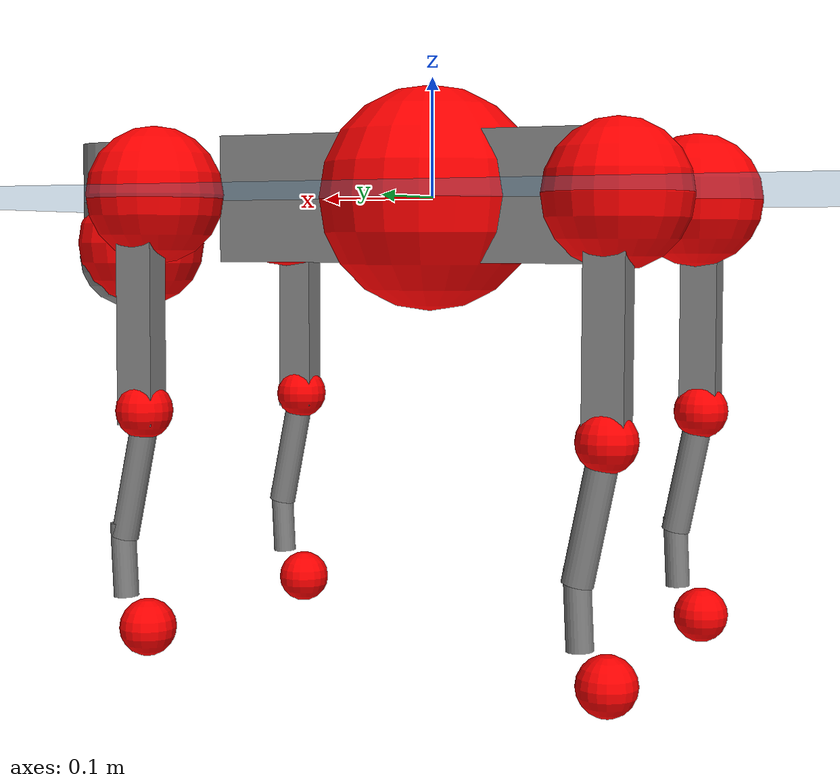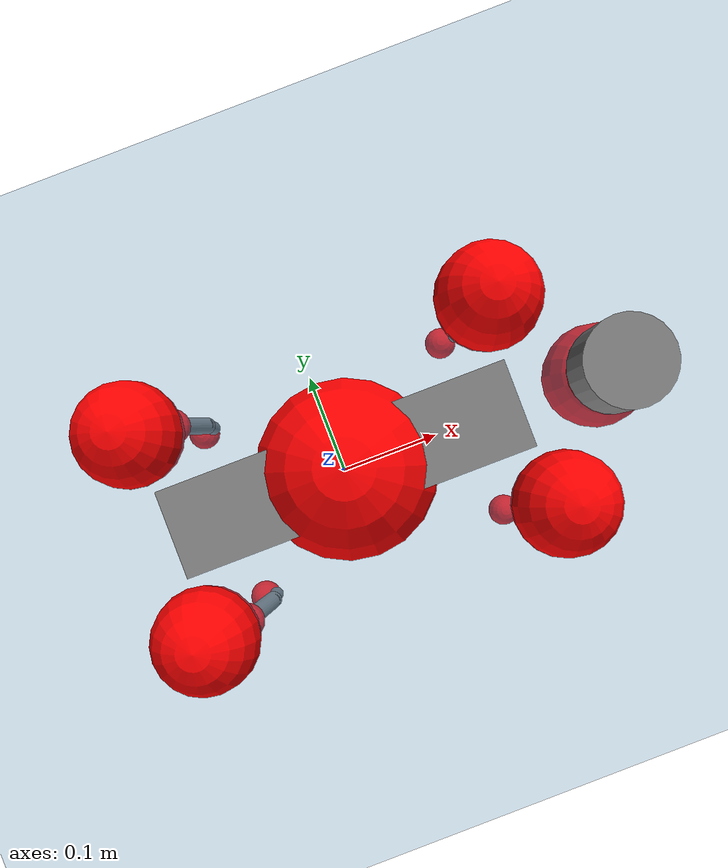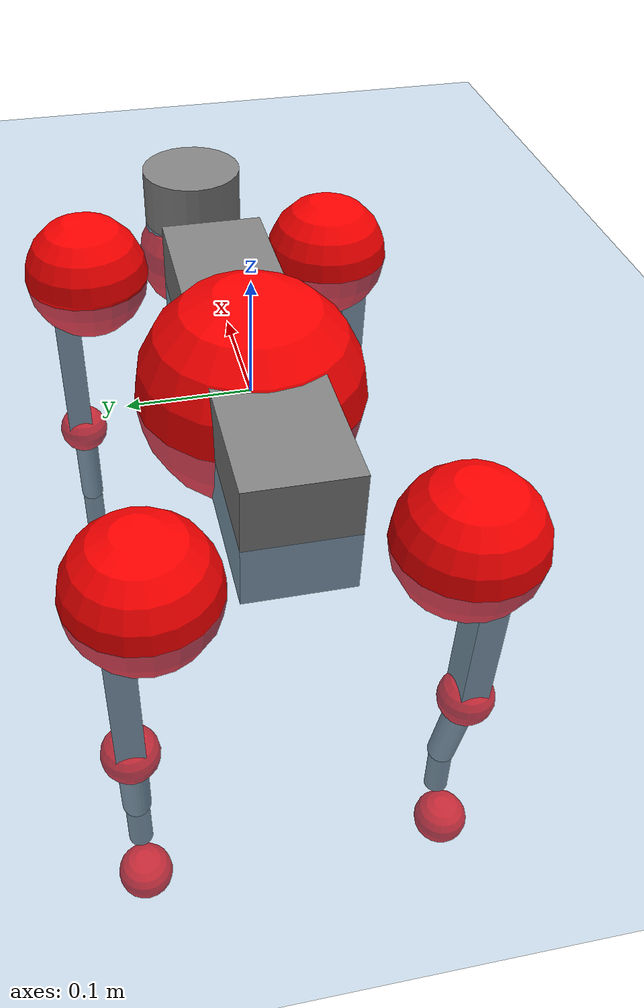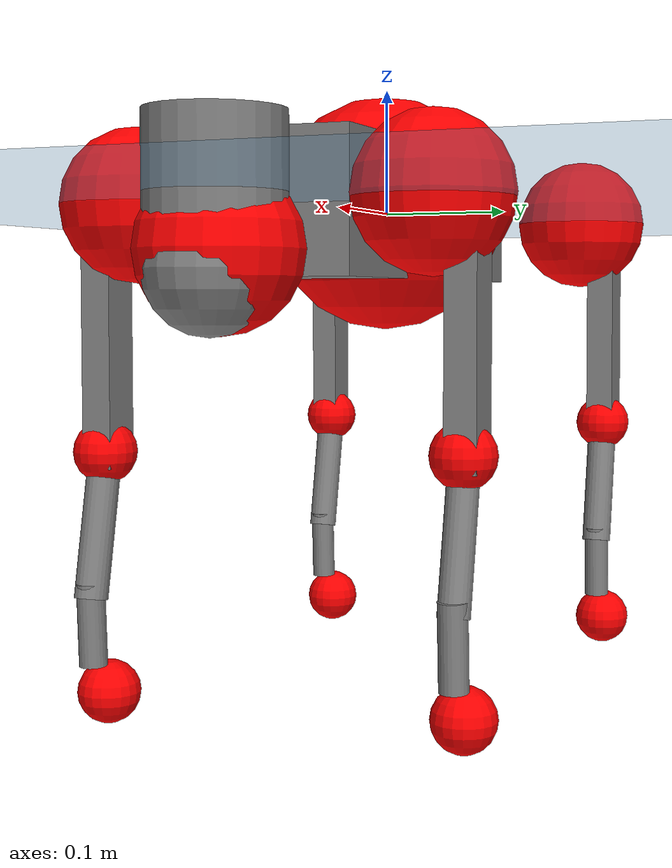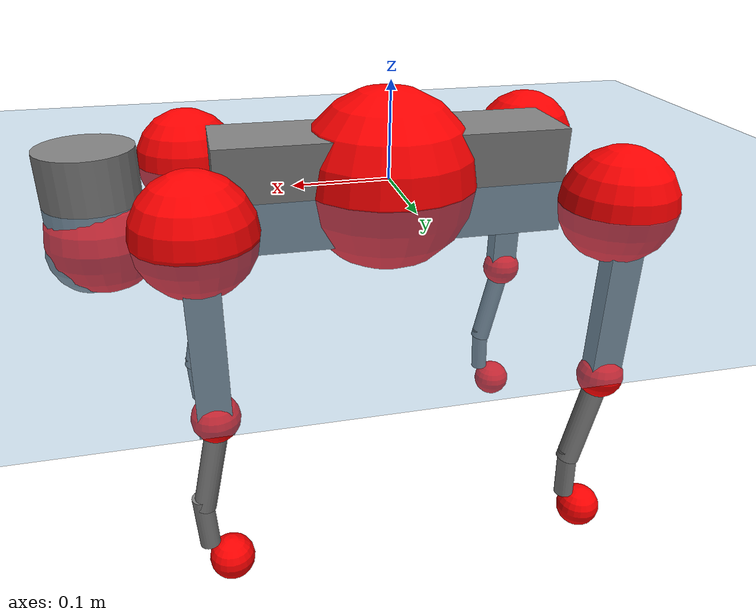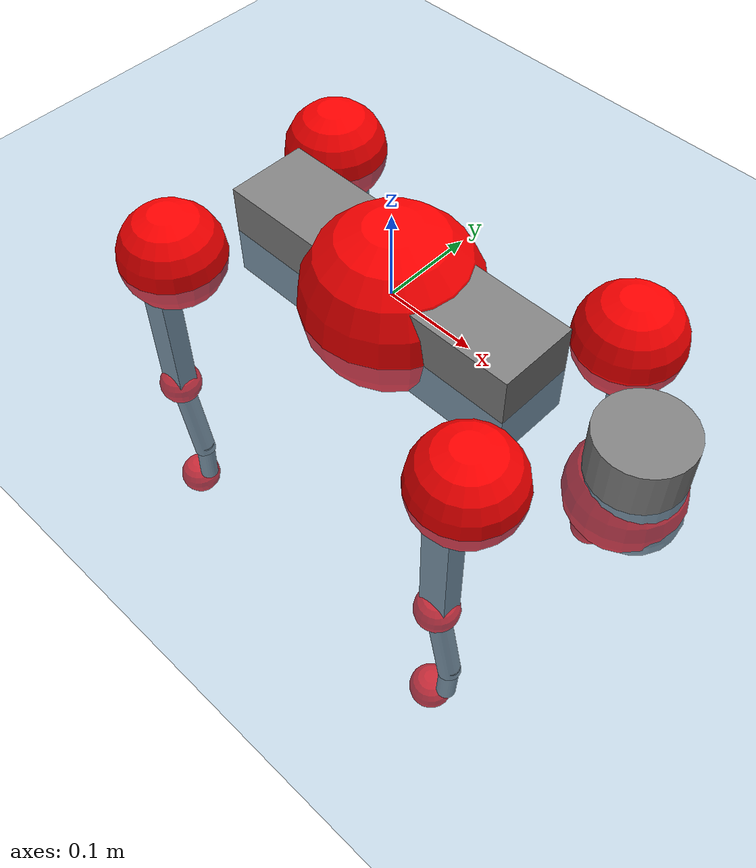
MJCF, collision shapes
<mujoco model="go2">
  <compiler angle="radian" assetdir="assets" balanceinertia="true" inertiafromgeom="false"/>

  <option timestep="0.005" density="1.2" viscosity="2e-05"/>

  <size nkey="1"/>

  <visual>
    <quality shadowsize="8192"/>
    <map shadowclip="0.5"/>
  </visual>

  <default>
    <default class="/">
      <geom contype="0" conaffinity="0" group="1" solref="-1000 -80"/>
      <site size="0.01 0.005 0.005" group="5"/>
      <general forcelimited="true" biastype="affine" gainprm="20" biasprm="0 -20 -0.5"/>
      <default class="go2">
        <joint armature="0.01" damping="0.01" frictionloss="0.2"/>
        <geom condim="1" margin="0.001"/>
        <default class="visual">
          <geom type="mesh" group="2"/>
        </default>
        <default class="collision">
          <geom group="3"/>
          <default class="foot">
            <geom size="0.022 0 0" condim="6" priority="1" friction="0.8 0.02 0.01" solimp="0.015 1 0.022"/>
          </default>
        </default>
        <default class="reward_collision_sphere">
          <geom group="5" rgba="1 0 0 1"/>
        </default>
      </default>
    </default>
  </default>

  <asset>
    <texture type="skybox" colorspace="auto" name="//unnamed_texture_0" builtin="gradient" rgb1="0.95 0.95 0.95" rgb2="0.95 0.95 0.95" width="100" height="600"/>
    <texture type="2d" colorspace="auto" name="texplane" builtin="checker" rgb1="0.345 0.575 0.748" rgb2="0.345 0.575 0.748" markrgb="1 1 1" width="512" height="512"/>
    <material name="MatPlane" class="/" texture="texplane" texuniform="true" texrepeat="2 2" specular="0.9"/>
    <material name="metal" class="/" rgba="0.9 0.95 0.95 1"/>
    <material name="black" class="/" rgba="0 0 0 1"/>
    <material name="white" class="/"/>
    <material name="gray" class="/" rgba="0.671705 0.692426 0.77427 1"/>
    <mesh name="base_0" class="/" file="base_0.obj"/>
    <mesh name="base_1" class="/" file="base_1.obj"/>
    <mesh name="base_2" class="/" file="base_2.obj"/>
    <mesh name="base_3" class="/" file="base_3.obj"/>
    <mesh name="base_4" class="/" file="base_4.obj"/>
    <mesh name="hip_0" class="/" file="hip_0.obj"/>
    <mesh name="hip_1" class="/" file="hip_1.obj"/>
    <mesh name="thigh_0" class="/" file="thigh_0.obj"/>
    <mesh name="thigh_1" class="/" file="thigh_1.obj"/>
    <mesh name="thigh_mirror_0" class="/" file="thigh_mirror_0.obj"/>
    <mesh name="thigh_mirror_1" class="/" file="thigh_mirror_1.obj"/>
    <mesh name="calf_0" class="/" file="calf_0.obj"/>
    <mesh name="calf_1" class="/" file="calf_1.obj"/>
    <mesh name="calf_mirror_0" class="/" file="calf_mirror_0.obj"/>
    <mesh name="calf_mirror_1" class="/" file="calf_mirror_1.obj"/>
    <mesh name="foot" class="/" file="foot.obj"/>
  </asset>

  <worldbody>
    <geom name="floor" class="/" size="100 100 0.125" type="plane" group="0" material="MatPlane"/>
    <light name="toplight_shadow" class="/" pos="0 0 5" dir="0.0990148 0.0990148 -0.990148" type="directional" ambient="0.04 0.04 0.04" diffuse="0.55 0.55 0.55" specular="0.12 0.12 0.12"/>
    <light name="toplight_fill" class="/" pos="0 0 5" dir="0.0990148 0.0990148 -0.990148" type="directional" castshadow="false" ambient="0.04 0.04 0.04" diffuse="0.3 0.3 0.3" specular="0.08 0.08 0.08"/>
    <body name="trunk" childclass="go2" pos="0.00260801 -0.000528753 0.000120743" quat="0.999999 0.000249072 -0.000932995 -0.00078516">
      <inertial pos="0.0187865 -0.000275314 -0.00460954" quat="0.00249811 0.712546 -0.000877199 0.701621" mass="5.55022" diaginertia="0.117484 0.0807722 0.0101601"/>
      <joint name="//unnamed_joint_0" type="free" armature="0" damping="0" frictionloss="0"/>
      <geom name="//unnamed_geom_1" class="visual" material="black" mesh="base_0"/>
      <geom name="//unnamed_geom_2" class="visual" material="black" mesh="base_1"/>
      <geom name="//unnamed_geom_3" class="visual" material="black" mesh="base_2"/>
      <geom name="//unnamed_geom_4" class="visual" material="white" mesh="base_3"/>
      <geom name="//unnamed_geom_5" class="visual" material="gray" mesh="base_4"/>
      <geom name="trunk_1" class="collision" size="0.177262 0.0440562 0.0537156" type="box"/>
      <geom name="trunk_2" class="collision" size="0.047119 0.0424071" pos="0.290892 0 0.00842382" type="cylinder"/>
      <geom name="trunk_3" class="collision" size="0.0442918" pos="0.299058 0 -0.0505429"/>
      <geom name="//unnamed_geom_9" class="reward_collision_sphere" size="0.0942379"/>
      <geom name="//unnamed_geom_10" class="reward_collision_sphere" size="0.0565428" pos="0.285789 0 -0.0379072"/>
      <site name="imu" pos="-0.0283433 0.00192116 0.0477013" size="0.00942379"/>
      <camera name="track" pos="0 -1.92816 0" quat="0.707107 0.707107 0 0" mode="trackcom"/>
      <camera name="ego_camera" pos="0.318451 0 0.0379072" quat="-0.5 -0.5 0.5 0.5"/>
      <body name="FL_hip" pos="0.197744 0.0462292 0.0016639" quat="1 -0.000164306 0.000188858 4.18483e-05">
        <inertial pos="-0.00653311 0.000661184 0.000318538" quat="0.496973 0.49981 0.504371 0.498816" mass="0.561758" diaginertia="0.000999512 0.000491841 0.000203295"/>
        <joint name="FL_hip_joint" pos="0 0 0" axis="0.999891 -0.0035745 -0.0143136" range="-0.997144 1.04712" armature="0.00934047" damping="0.00900405" frictionloss="0.190245"/>
        <geom name="//unnamed_geom_11" class="visual" material="metal" mesh="hip_0"/>
        <geom name="//unnamed_geom_12" class="visual" material="gray" mesh="hip_1"/>
        <geom name="//unnamed_geom_13" class="collision" size="0.0433494 0.0188476" pos="0 0.0771265 0" quat="0.707107 0.707107 0 0" type="cylinder"/>
        <geom name="//unnamed_geom_14" class="reward_collision_sphere" size="0.0565428" pos="0 0.0674857 0"/>
        <body name="FL_thigh" pos="-0.00105278 0.0916489 0.0022594" quat="1 0.00041908 -0.000792034 0.000406967">
          <inertial pos="-0.00268323 -0.0223799 -0.02985" quat="0.829659 0.0847941 -0.0197925 0.551439" mass="0.938566" diaginertia="0.0064625 0.00479992 0.000377327"/>
          <joint name="FL_thigh_joint" pos="0 0 0" axis="0.00713338 0.999949 -0.00712289" range="-1.56843 3.49331" armature="0.00967591" damping="0.00616741" frictionloss="0.196562"/>
          <geom name="//unnamed_geom_15" class="visual" material="metal" mesh="thigh_0"/>
          <geom name="//unnamed_geom_16" class="visual" material="gray" mesh="thigh_1"/>
          <geom name="//unnamed_geom_17" class="collision" size="0.100363 0.0115441 0.0160204" pos="0 0 -0.0897137" quat="0.707107 0 0.707107 0" type="box"/>
          <body name="FL_calf" pos="-0.000747437 -0.00292654 -0.178766" quat="1 0.000289277 0.000132375 -0.000255561">
            <inertial pos="0.00446065 -0.000385865 -0.117258" quat="0.712572 0.0020556 -0.00625423 0.701568" mass="0.20177" diaginertia="0.00168968 0.00127474 2.29762e-05"/>
            <joint name="FL_calf_joint" pos="0 0 0" axis="-0.00706396 0.999969 0.0034782" stiffness="0.00647342" range="-2.77399 -0.827976" armature="0.00948648" damping="0" frictionloss="0.190959"/>
            <geom name="//unnamed_geom_18" class="visual" material="gray" mesh="calf_0"/>
            <geom name="//unnamed_geom_19" class="visual" material="black" mesh="calf_1"/>
            <geom name="FL_calf0" class="collision" size="0.0113086 0.0565428" pos="0.0081654 0 -0.0505429" quat="0.994493 0 -0.104807 0" type="cylinder"/>
            <geom name="//unnamed_geom_21" class="collision" size="0.0103662 0.0306273" pos="0.0204135 0 -0.124673" quat="0.999688 0 0.0249974 0" type="cylinder"/>
            <geom name="//unnamed_geom_22" class="visual" pos="0 0 -0.179427" quat="1 0 0 0" material="black" mesh="foot"/>
            <geom name="FL_foot" class="foot" size="0.0184404" pos="-0.00204135 0 -0.179427"/>
            <geom name="//unnamed_geom_24" class="reward_collision_sphere" size="0.0235595"/>
            <geom name="//unnamed_geom_25" class="reward_collision_sphere" size="0.0235595" pos="-0.00204135 0 -0.179427"/>
            <site name="FL_foot" class="foot" pos="-0.00204135 0 -0.179427" size="0.00942379"/>
          </body>
        </body>
      </body>
      <body name="FR_hip" pos="0.197688 -0.0457658 -0.00203034" quat="1 7.75746e-05 0.000433341 0.000708299">
        <inertial pos="-0.00488366 -0.00415085 -0.000573238" quat="0.502832 0.498995 0.505004 0.493087" mass="0.561792" diaginertia="0.000952662 0.000492795 0.000199647"/>
        <joint name="FR_hip_joint" pos="0 0 0" axis="0.999982 0.00472638 0.00364233" stiffness="0.00419778" range="-1.06747 1.04872" armature="0.00897083" damping="0.0171017" frictionloss="0.168097"/>
        <geom name="//unnamed_geom_26" class="visual" pos="0 1.06019e-09 4.54736e-08" quat="4.63268e-05 1 0 0" material="metal" mesh="hip_0"/>
        <geom name="//unnamed_geom_27" class="visual" pos="0 1.71869e-09 -1.12474e-07" quat="4.63268e-05 1 0 0" material="gray" mesh="hip_1"/>
        <geom name="//unnamed_geom_28" class="collision" size="0.0433494 0.0188476" pos="0 -0.0771265 0" quat="0.707107 0.707107 0 0" type="cylinder"/>
        <geom name="//unnamed_geom_29" class="reward_collision_sphere" size="0.0565428" pos="0 -0.0674857 0"/>
        <body name="FR_thigh" pos="0.000548332 -0.0946872 -0.00133464" quat="1 -0.000280667 -0.000130261 0.000210555">
          <inertial pos="-0.00302821 0.019888 -0.027806" quat="0.548729 -0.0229025 0.0817792 0.831676" mass="0.975574" diaginertia="0.00656362 0.00492624 0.000382765"/>
          <joint name="FR_thigh_joint" pos="0 0 0" axis="-0.00171259 -0.999999 -2.35011e-05" range="-3.48739 1.60811" armature="0.00948996" damping="0.0162509" frictionloss="0.185738"/>
          <geom name="//unnamed_geom_30" class="visual" material="metal" mesh="thigh_mirror_0"/>
          <geom name="//unnamed_geom_31" class="visual" material="gray" mesh="thigh_mirror_1"/>
          <geom name="//unnamed_geom_32" class="collision" size="0.100363 0.0115441 0.0160204" pos="0 0 -0.0897137" quat="0.707107 0 0.707107 0" type="box"/>
          <body name="FR_calf" pos="-0.000391269 -0.00250672 -0.178652" quat="1 -1.74829e-05 1.13185e-05 -6.66623e-06">
            <inertial pos="0.00656008 0.00119666 -0.119625" quat="0.699114 0.00560727 0.00220909 0.714985" mass="0.200436" diaginertia="0.00164772 0.00121581 2.20752e-05"/>
            <joint name="FR_calf_joint" pos="0 0 0" axis="-0.00613096 -0.999918 -0.0112811" range="0.847203 2.75191" armature="0.0098331" damping="0.0220755" frictionloss="0.193914"/>
            <geom name="//unnamed_geom_33" class="visual" material="gray" mesh="calf_mirror_0"/>
            <geom name="//unnamed_geom_34" class="visual" material="black" mesh="calf_mirror_1"/>
            <geom name="FR_calf0" class="collision" size="0.0122509 0.0565428" pos="0.0102068 0 -0.0505429" quat="0.995004 0 -0.0998334 0" type="cylinder"/>
            <geom name="//unnamed_geom_36" class="collision" size="0.0103662 0.0306273" pos="0.0204135 0 -0.124673" quat="0.999688 0 0.0249974 0" type="cylinder"/>
            <geom name="//unnamed_geom_37" class="visual" pos="0 0 -0.179427" quat="1 0 0 0" material="black" mesh="foot"/>
            <geom name="FR_foot" class="foot" size="0.022897" pos="-0.00204135 0 -0.179427"/>
            <geom name="//unnamed_geom_39" class="reward_collision_sphere" size="0.0235595"/>
            <geom name="//unnamed_geom_40" class="reward_collision_sphere" size="0.0235595" pos="-0.00204135 0 -0.179427"/>
            <site name="FR_foot" class="foot" pos="-0.00204135 0 -0.179427" size="0.00942379"/>
          </body>
        </body>
      </body>
      <body name="RL_hip" pos="-0.198327 0.0459512 -0.00180383" quat="1 0.000564929 -0.000271259 0.000212821">
        <inertial pos="0.00473067 0.00478893 -0.00136022" quat="0.514267 0.497871 0.487453 0.500043" mass="0.578838" diaginertia="0.000973111 0.00048983 0.000207444"/>
        <joint name="RL_hip_joint" pos="0 0 0" axis="-0.99985 0.00995298 0.0141867" stiffness="0.00685402" range="-1.04729 1.03051" armature="0.00852105" damping="0.0135199" frictionloss="0.210682"/>
        <geom name="//unnamed_geom_41" class="visual" pos="-1.55321e-09 0 -3.04466e-07" quat="4.63268e-05 0 1 0" material="metal" mesh="hip_0"/>
        <geom name="//unnamed_geom_42" class="visual" pos="-2.51795e-09 0 -2.70018e-07" quat="4.63268e-05 0 1 0" material="gray" mesh="hip_1"/>
        <geom name="//unnamed_geom_43" class="collision" size="0.0433494 0.0188476" pos="0 0.0771265 0" quat="0.707107 0.707107 0 0" type="cylinder"/>
        <geom name="//unnamed_geom_44" class="reward_collision_sphere" size="0.0565428" pos="0 0.0674857 0"/>
        <body name="RL_thigh" pos="-0.000355637 0.0890164 0.00194424" quat="1 2.86531e-06 3.1937e-06 2.81556e-06">
          <inertial pos="-0.00373608 -0.0213099 -0.0282586" quat="0.831182 0.0814866 -0.0203321 0.549621" mass="0.9819" diaginertia="0.00654359 0.00476929 0.000372963"/>
          <joint name="RL_thigh_joint" pos="0 0 0" axis="0.00550854 0.999971 0.00529353" stiffness="0.00886708" range="-0.513142 4.5428" armature="0.0102016" damping="0.00694539" frictionloss="0.189025"/>
          <geom name="//unnamed_geom_45" class="visual" material="metal" mesh="thigh_0"/>
          <geom name="//unnamed_geom_46" class="visual" material="gray" mesh="thigh_1"/>
          <geom name="//unnamed_geom_47" class="collision" size="0.100363 0.0115441 0.0160204" pos="0 0 -0.0897137" quat="0.707107 0 0.707107 0" type="box"/>
          <body name="RL_calf" pos="-9.87366e-05 -0.000407354 -0.182066" quat="1 -3.10469e-05 -0.000230755 0.000304917">
            <inertial pos="0.00724801 0.00216112 -0.118435" quat="0.710466 0.000403835 -0.00506524 0.703713" mass="0.1996" diaginertia="0.00162352 0.00121309 2.15542e-05"/>
            <joint name="RL_calf_joint" pos="0 0 0" axis="-0.00130682 0.999992 -0.0037728" range="-2.72152 -0.840678" armature="0.0096406" damping="0" frictionloss="0.212875"/>
            <geom name="//unnamed_geom_48" class="visual" material="gray" mesh="calf_0"/>
            <geom name="//unnamed_geom_49" class="visual" material="black" mesh="calf_1"/>
            <geom name="RL_calf0" class="collision" size="0.0122509 0.0565428" pos="0.0102068 0 -0.0505429" quat="0.995004 0 -0.0998334 0" type="cylinder"/>
            <geom name="//unnamed_geom_51" class="collision" size="0.0103662 0.0306273" pos="0.0204135 0 -0.124673" quat="0.999688 0 0.0249974 0" type="cylinder"/>
            <geom name="//unnamed_geom_52" class="visual" pos="0 0 -0.179427" quat="1 0 0 0" material="black" mesh="foot"/>
            <geom name="RL_foot" class="foot" size="0.0173955" pos="-0.00204135 0 -0.179427"/>
            <geom name="//unnamed_geom_54" class="reward_collision_sphere" size="0.0235595"/>
            <geom name="//unnamed_geom_55" class="reward_collision_sphere" size="0.0235595" pos="-0.00204135 0 -0.179427"/>
            <site name="RL_foot" class="foot" pos="-0.00204135 0 -0.179427" size="0.00942379"/>
          </body>
        </body>
      </body>
      <body name="RR_hip" pos="-0.198169 -0.0454391 -0.000469239" quat="0.999999 -0.00040601 0.000925485 0.000553832">
        <inertial pos="0.00799621 -0.000146896 -0.00270195" quat="0.501094 0.501735 0.494665 0.502468" mass="0.567382" diaginertia="0.000982114 0.000495155 0.000202954"/>
        <joint name="RR_hip_joint" pos="0 0 0" axis="-0.999903 -0.013665 -0.00257591" stiffness="0.00233737" range="-1.06079 1.03878" armature="0.00946351" damping="0.0140022" frictionloss="0.182041"/>
        <geom name="//unnamed_geom_56" class="visual" pos="1.55125e-09 1.06019e-09 -3.49939e-07" quat="2.14617e-09 4.63268e-05 4.63268e-05 -1" material="metal" mesh="hip_0"/>
        <geom name="//unnamed_geom_57" class="visual" pos="2.52279e-09 1.71869e-09 -1.57544e-07" quat="2.14617e-09 4.63268e-05 4.63268e-05 -1" material="gray" mesh="hip_1"/>
        <geom name="//unnamed_geom_58" class="collision" size="0.0433494 0.0188476" pos="0 -0.0771265 0" quat="0.707107 0.707107 0 0" type="cylinder"/>
        <geom name="//unnamed_geom_59" class="reward_collision_sphere" size="0.0565428" pos="0 -0.0674857 0"/>
        <body name="RR_thigh" pos="0.000946652 -0.0915132 -0.00268873" quat="1 -0.000254338 -9.28202e-05 0.000204184">
          <inertial pos="-0.00331707 0.0212532 -0.0275779" quat="0.552737 -0.0195487 0.0849461 0.828784" mass="0.938728" diaginertia="0.00664171 0.00493824 0.000373253"/>
          <joint name="RR_thigh_joint" pos="0 0 0" axis="-0.012575 -0.999907 -0.00529042" range="-4.53327 0.569098" armature="0.00930268" damping="0.0115259" frictionloss="0.181639"/>
          <geom name="//unnamed_geom_60" class="visual" material="metal" mesh="thigh_mirror_0"/>
          <geom name="//unnamed_geom_61" class="visual" material="gray" mesh="thigh_mirror_1"/>
          <geom name="//unnamed_geom_62" class="collision" size="0.100363 0.0115441 0.0160204" pos="0 0 -0.0897137" quat="0.707107 0 0.707107 0" type="box"/>
          <body name="RR_calf" pos="-0.00100009 0.000434929 -0.179921" quat="1 7.53395e-05 -0.000210516 1.44228e-05">
            <inertial pos="0.00468154 0.000409513 -0.119228" quat="0.703652 -0.00331599 0.00291616 0.710531" mass="0.200192" diaginertia="0.00163167 0.0012183 2.30589e-05"/>
            <joint name="RR_calf_joint" pos="0 0 0" axis="-0.0165009 -0.99983 0.00825605" range="0.857272 2.73232" armature="0.00995215" damping="0.0222707" frictionloss="0.198466"/>
            <geom name="//unnamed_geom_63" class="visual" material="gray" mesh="calf_mirror_0"/>
            <geom name="//unnamed_geom_64" class="visual" material="black" mesh="calf_mirror_1"/>
            <geom name="RR_calf0" class="collision" size="0.0122509 0.0565428" pos="0.0102068 0 -0.0505429" quat="0.995004 0 -0.0998334 0" type="cylinder"/>
            <geom name="//unnamed_geom_66" class="collision" size="0.0103662 0.0306273" pos="0.0204135 0 -0.124673" quat="0.999688 0 0.0249974 0" type="cylinder"/>
            <geom name="//unnamed_geom_67" class="visual" pos="0 0 -0.179427" quat="1 0 0 0" material="black" mesh="foot"/>
            <geom name="RR_foot" class="foot" size="0.0215203" pos="-0.00204135 0 -0.179427"/>
            <geom name="//unnamed_geom_69" class="reward_collision_sphere" size="0.0235595"/>
            <geom name="//unnamed_geom_70" class="reward_collision_sphere" size="0.0235595" pos="-0.00204135 0 -0.179427"/>
            <site name="RR_foot" class="foot" pos="-0.00204135 0 -0.179427" size="0.00942379"/>
          </body>
        </body>
      </body>
    </body>
  </worldbody>

  <contact>
    <pair class="/" geom1="floor" geom2="FL_foot" name="//unnamed_contact_0"/>
    <pair class="/" geom1="floor" geom2="FR_foot" name="//unnamed_contact_1"/>
    <pair class="/" geom1="floor" geom2="RL_foot" name="//unnamed_contact_2"/>
    <pair class="/" geom1="floor" geom2="RR_foot" name="//unnamed_contact_3"/>
  </contact>

  <actuator>
    <general name="FL_hip" class="/" joint="FL_hip_joint" forcerange="-22.2613 22.2613" gainprm="19.2619" biasprm="0 -19.2619 -0.453129"/>
    <general name="FL_thigh" class="/" joint="FL_thigh_joint" forcerange="-22.137 22.137" gainprm="19.2619" biasprm="0 -19.2619 -0.453129"/>
    <general name="FL_calf" class="/" joint="FL_calf_joint" forcerange="-43.0482 43.0482" gainprm="19.2619" biasprm="0 -19.2619 -0.453129"/>
    <general name="FR_hip" class="/" joint="FR_hip_joint" forcerange="-22.0028 22.0028" gainprm="19.2619" biasprm="0 -19.2619 -0.453129"/>
    <general name="FR_thigh" class="/" joint="FR_thigh_joint" forcerange="-22.5631 22.5631" gainprm="19.2619" biasprm="0 -19.2619 -0.453129"/>
    <general name="FR_calf" class="/" joint="FR_calf_joint" forcerange="-42.6105 42.6105" gainprm="19.2619" biasprm="0 -19.2619 -0.453129"/>
    <general name="RL_hip" class="/" joint="RL_hip_joint" forcerange="-24.4603 24.4603" gainprm="19.2619" biasprm="0 -19.2619 -0.453129"/>
    <general name="RL_thigh" class="/" joint="RL_thigh_joint" forcerange="-22.4758 22.4758" gainprm="19.2619" biasprm="0 -19.2619 -0.453129"/>
    <general name="RL_calf" class="/" joint="RL_calf_joint" forcerange="-38.7532 38.7532" gainprm="19.2619" biasprm="0 -19.2619 -0.453129"/>
    <general name="RR_hip" class="/" joint="RR_hip_joint" forcerange="-21.2666 21.2666" gainprm="19.2619" biasprm="0 -19.2619 -0.453129"/>
    <general name="RR_thigh" class="/" joint="RR_thigh_joint" forcerange="-24.4201 24.4201" gainprm="19.2619" biasprm="0 -19.2619 -0.453129"/>
    <general name="RR_calf" class="/" joint="RR_calf_joint" forcerange="-41.3245 41.3245" gainprm="19.2619" biasprm="0 -19.2619 -0.453129"/>
  </actuator>

  <sensor>
    <gyro site="imu" name="imu_angular_velocity"/>
    <velocimeter site="imu" name="imu_linear_velocity"/>
    <framelinvel objtype="site" objname="FL_foot" name="FL_foot_global_linear_velocity"/>
    <framelinvel objtype="site" objname="FR_foot" name="FR_foot_global_linear_velocity"/>
    <framelinvel objtype="site" objname="RL_foot" name="RL_foot_global_linear_velocity"/>
    <framelinvel objtype="site" objname="RR_foot" name="RR_foot_global_linear_velocity"/>
  </sensor>

  <keyframe>
    <key name="home" qpos="0 0 0.325 1 0 0 0 0.1 0.8 -1.5 -0.1 -0.8 1.5 -0.1 0.8 -1.5 0.1 -0.8 1.5"/>
  </keyframe>
</mujoco>
